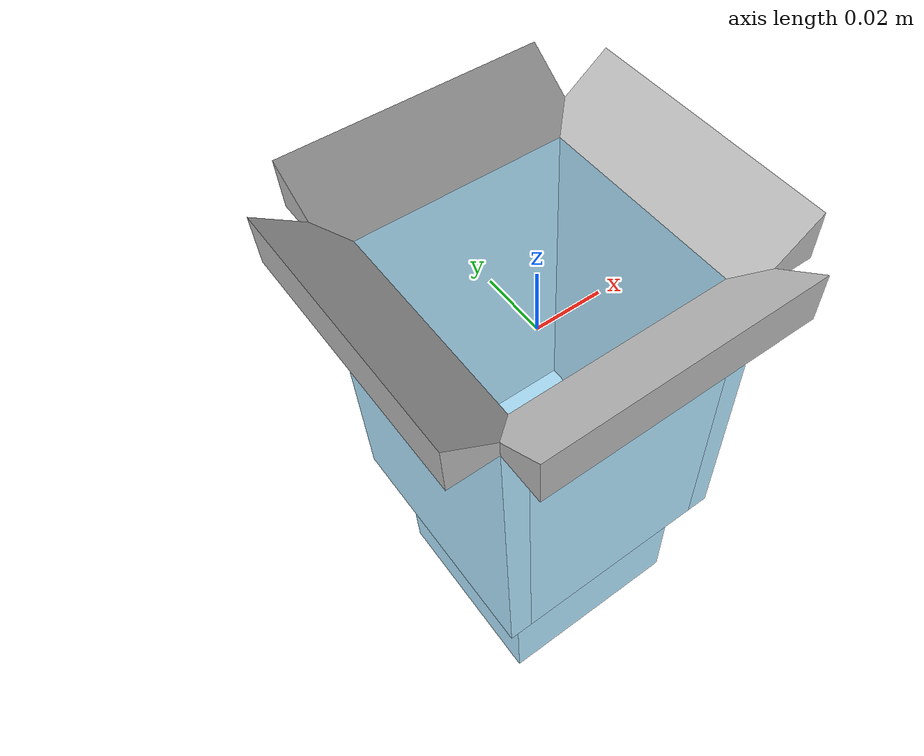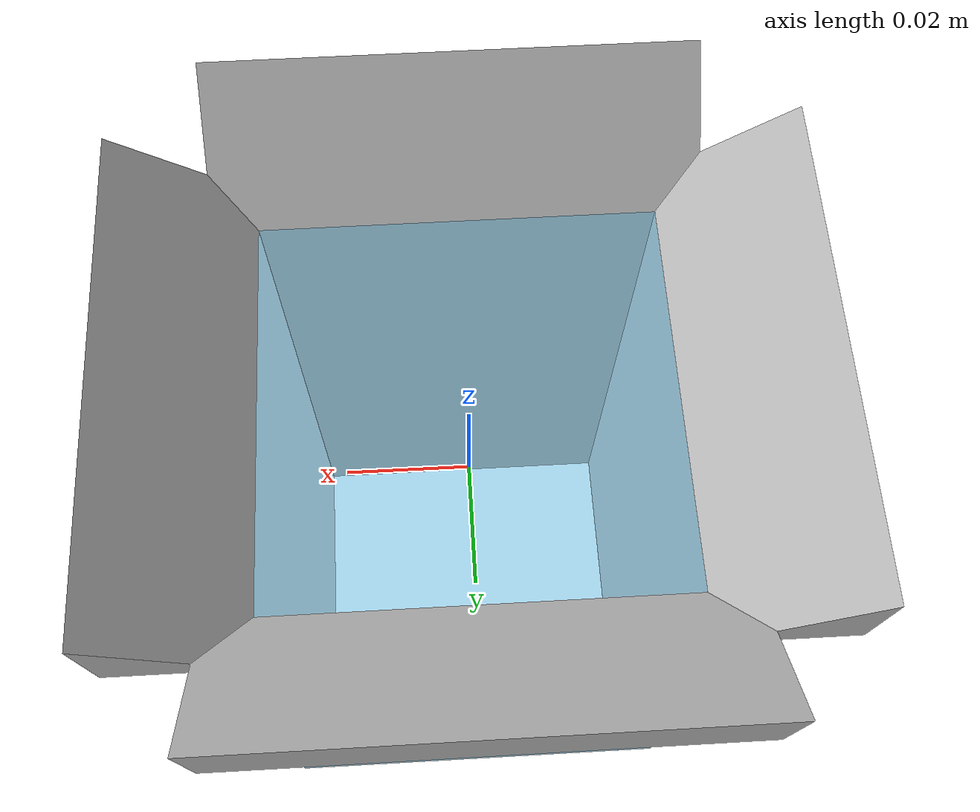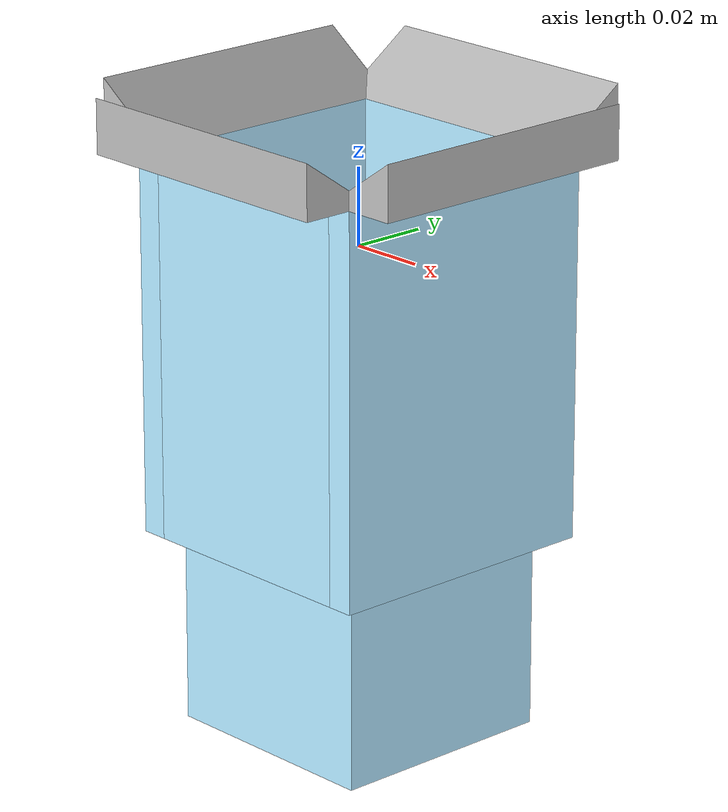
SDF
<?xml version="1.0"?>
<sdf version="1.7">
<world name="w">
  <model name="bin_model">
    <!--
    Axes:
      +X - Pointing towards front
      +Y - Pointing to left side
      +Z - Up
    Origin:
      (0, 0, 0) at the center bottom of the bin
    -->
    <link name="bin_base">
      <inertial>
        <mass>18.70</mass>
        <inertia>
          <ixx>1.0</ixx><ixy>0</ixy><ixz>0</ixz>
          <iyy>1.0</iyy><iyz>0</iyz><izz>1.0</izz>
        </inertia>
      </inertial>

      <!--bottom-->
      <visual name="bottom">
        <pose>-0.0 -0.0 -0.1 0 0 0</pose>
        <geometry>
          <box>
            <size>0.061 0.061 0.05</size>
          </box>
        </geometry>
        <material>
            <diffuse>0.69 0.9 1 1</diffuse>
        </material>
      </visual>
      <collision name="bottom">
        <pose>-0.0 -0.0 -0.1 0 0 0</pose>
        <geometry>
          <box>
            <size>0.061 0.061 0.05</size>
          </box>
        </geometry>
        <drake:proximity_properties>
            <drake:mu_dynamic>1</drake:mu_dynamic>
            <drake:mu_static>1</drake:mu_static>
            <drake:rigid_hydroelastic/>
            <drake:mesh_resolution_hint>0.00001</drake:mesh_resolution_hint>
            <drake:hunt_crossley_dissipation>0.5</drake:hunt_crossley_dissipation>
            <drake:relaxation_time>0.0001</drake:relaxation_time>
        </drake:proximity_properties>
    </collision>
    <!--front/back wide walls-->
      <visual name="front">
        <pose>-0.034 -0.0 -0.025 0 0 0</pose>
        <geometry>
          <box>
            <size>0.007 0.075 0.1</size>
          </box>
        </geometry>
      <material>
        <diffuse>0.69 0.9 1 1</diffuse>
    </material>
    </visual>
      <collision name="front">
        <pose>-0.034 -0.0 -0.025 0 0 0</pose>
        <geometry>
          <box>
            <size>0.007 0.075 0.1</size>
          </box>
        </geometry>
        <drake:proximity_properties>
            <drake:mu_dynamic>1</drake:mu_dynamic>
            <drake:mu_static>1</drake:mu_static>
            <drake:rigid_hydroelastic/>
            <drake:mesh_resolution_hint>0.00001</drake:mesh_resolution_hint>
            <drake:hunt_crossley_dissipation>0.5</drake:hunt_crossley_dissipation>
        </drake:proximity_properties>
    </collision>
      <visual name="back">
        <pose>0.034 -0.0 -0.025 0 0 0</pose>
        <geometry>
          <box>
            <size>0.007 0.075 0.1</size>
          </box>
        </geometry>
      <material>
        <diffuse>0.69 0.9 1 1</diffuse>
    </material>
    </visual>
      <collision name="back">
        <pose>0.034 -0.0 -0.025 0 0 0</pose>
        <geometry>
          <box>
            <size>0.007 0.075 0.1</size>
          </box>
        </geometry>
        <drake:proximity_properties>
            <drake:mu_dynamic>1</drake:mu_dynamic>
            <drake:mu_static>1</drake:mu_static>
            <drake:rigid_hydroelastic/>
            <drake:mesh_resolution_hint>0.00001</drake:mesh_resolution_hint>
            <drake:hunt_crossley_dissipation>0.5</drake:hunt_crossley_dissipation>
        </drake:proximity_properties>
    </collision>
    <visual name="front_chamfer">
        <pose>-0.0405 -0.0 0.04 0 1.570796 0</pose>
        <geometry>
            <mesh><drake:declare_convex/><uri>ChamferBig.obj</uri></mesh>
        </geometry>
      </visual>
      <collision name="front_chamfer">
        <pose>-0.0405 -0.0 0.04 0 1.570796 0</pose>
        <geometry>
            <mesh><drake:declare_convex/><uri>ChamferBig.obj</uri></mesh>
        </geometry>
       <drake:proximity_properties>
            <drake:mu_dynamic>1</drake:mu_dynamic>
            <drake:mu_static>1</drake:mu_static>
            <drake:rigid_hydroelastic/>
            <drake:mesh_resolution_hint>0.00001</drake:mesh_resolution_hint>
            <drake:hunt_crossley_dissipation>0.5</drake:hunt_crossley_dissipation>
        </drake:proximity_properties>
    </collision>
    <visual name="back_chamfer">
        <pose>0.0405 -0.0 0.04 0 1.570796 3.1415926</pose>
        <geometry>
            <mesh><drake:declare_convex/><uri>ChamferBig.obj</uri></mesh>
        </geometry>
      </visual>
      <collision name="back_chamfer">
        <pose>0.0405 -0.0 0.04 0 1.570796 3.1415926</pose>
        <geometry>
            <mesh><drake:declare_convex/><uri>ChamferBig.obj</uri></mesh>
        </geometry>
        <drake:proximity_properties>
            <drake:mu_dynamic>0.0</drake:mu_dynamic>
            <drake:mu_static>0.0</drake:mu_static>
            <drake:rigid_hydroelastic/>
            <drake:mesh_resolution_hint>0.00001</drake:mesh_resolution_hint>
            <drake:hunt_crossley_dissipation>0.5</drake:hunt_crossley_dissipation>
        </drake:proximity_properties>
    </collision>

    <!--left right walls-->
    <visual name="left">
        <pose>0.0 0.034 -0.025 0 0 0</pose>
        <geometry>
          <box>
            <size>0.061 0.007 0.1</size>
          </box>
        </geometry>
      <material>
        <diffuse>0.69 0.9 1 1</diffuse>
    </material>
    </visual>
      <collision name="left">
        <pose>0.0 0.034 -0.025 0 0 0</pose>
        <geometry>
          <box>
            <size>0.061 0.007 0.1</size>
          </box>
        </geometry>
        <drake:proximity_properties>
            <drake:mu_dynamic>0.0</drake:mu_dynamic>
            <drake:mu_static>0.0</drake:mu_static>
            <drake:rigid_hydroelastic/>
            <drake:mesh_resolution_hint>0.00001</drake:mesh_resolution_hint>
            <drake:hunt_crossley_dissipation>0.5</drake:hunt_crossley_dissipation>
        </drake:proximity_properties>
    </collision>

    <visual name="right">
        <pose>0.0 -0.034 -0.025 0 0 0</pose>
        <geometry>
          <box>
            <size>0.061 0.007 0.1</size>
          </box>
        </geometry>
        <material>
            <diffuse>0.69 0.9 1 1</diffuse>
        </material>
      </visual>
      <collision name="right">
        <pose>0.0 -0.034 -0.025 0 0 0</pose>
        <geometry>
          <box>
            <size>0.061 0.007 0.1</size>
          </box>
        </geometry>
        <drake:proximity_properties>
            <drake:mu_dynamic>0.0</drake:mu_dynamic>
            <drake:mu_static>0.0</drake:mu_static>
            <drake:rigid_hydroelastic/>
            <drake:mesh_resolution_hint>0.00001</drake:mesh_resolution_hint>
            <drake:hunt_crossley_dissipation>0.5</drake:hunt_crossley_dissipation>
        </drake:proximity_properties>
    </collision>
    <visual name="left_chamfer">
        <pose>0.0 0.0405 0.04 0 1.570796 -1.570796</pose>
        <geometry>
            <mesh><uri>ChamferBig.obj</uri></mesh>
        </geometry>
      </visual>
      <collision name="left_chamfer">
        <pose>0.0 0.0405 0.04 0 1.570796 -1.570796</pose>
        <geometry>
            <mesh><drake:declare_convex/><uri>ChamferBig.obj</uri></mesh>
        </geometry>
       <drake:proximity_properties>
            <drake:mu_dynamic>0.0</drake:mu_dynamic>
            <drake:mu_static>0.0</drake:mu_static>
            <drake:rigid_hydroelastic/>
            <drake:mesh_resolution_hint>0.00001</drake:mesh_resolution_hint>
            <drake:hunt_crossley_dissipation>0.5</drake:hunt_crossley_dissipation>
        </drake:proximity_properties>
    </collision>
    <visual name="right_chamfer">
        <pose>0.0 -0.0405 0.04 0 1.570796 1.570796</pose>
        <geometry>
            <mesh><uri>ChamferBig.obj</uri></mesh>
        </geometry>
      </visual>
      <collision name="right_chamfer">
        <pose>0.0 -0.0405 0.04 0 1.570796 1.570796</pose>
        <geometry>
            <mesh><drake:declare_convex/><uri>ChamferBig.obj</uri></mesh>
        </geometry>
       <drake:proximity_properties>
            <drake:mu_dynamic>1</drake:mu_dynamic>
            <drake:mu_static>1</drake:mu_static>
            <drake:rigid_hydroelastic/>
            <drake:mesh_resolution_hint>0.00001</drake:mesh_resolution_hint>
            <drake:hunt_crossley_dissipation>0.5</drake:hunt_crossley_dissipation>
        </drake:proximity_properties>
    </collision>

    </link>
</model>
</world>
</sdf>
